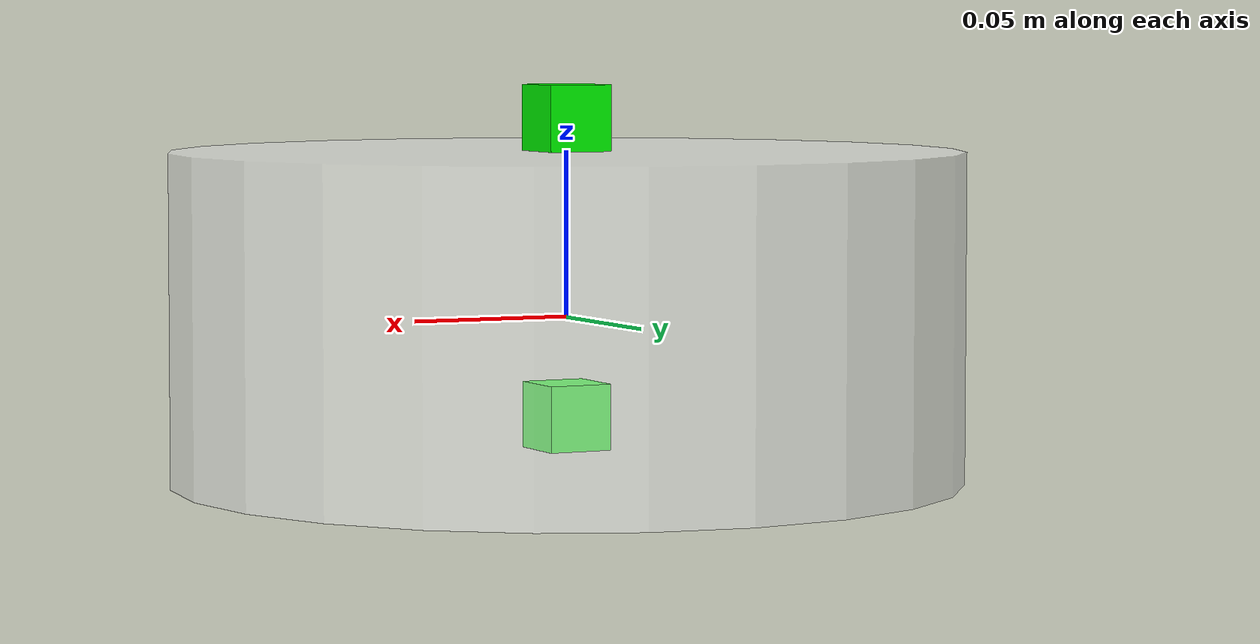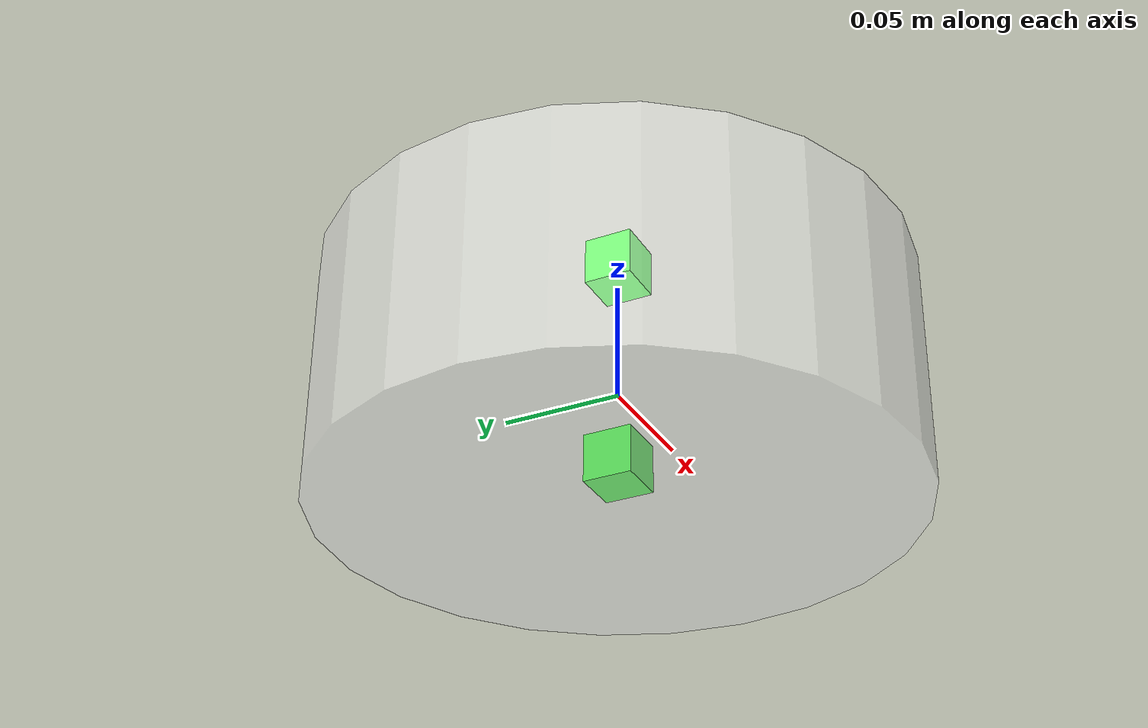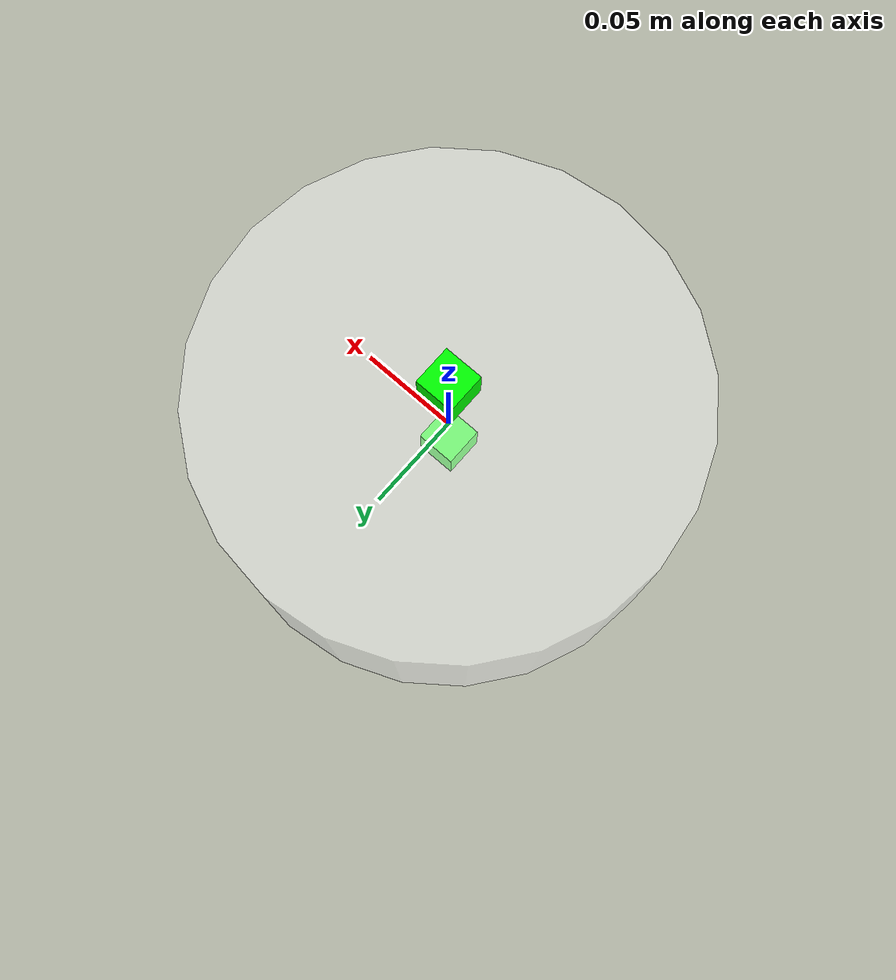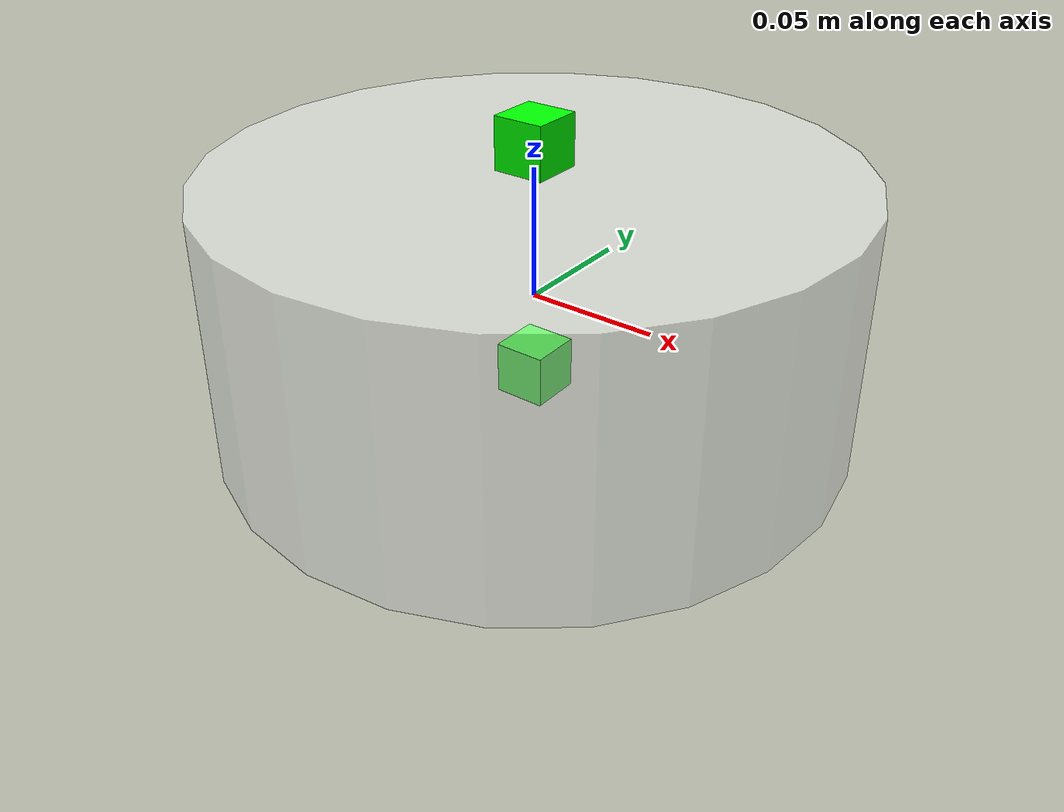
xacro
<?xml version="1.0"?>
<robot xmlns:xacro="http://www.ros.org/wiki/xacro" name="first_robot">
   <xacro:macro name="base_link" params="length radius">
    <link name="base_link">
      <visual>
        <origin xyz="0 0 0" rpy="0 0 0"/>
        <geometry>
          <cylinder length="${length}" radius="${radius}"/>
        </geometry>
        <material name="white">
          <color rgba="1.0 1.0 1.0 0.5"/>
        </material>
      </visual>
    </link>
  </xacro:macro>

    <xacro:macro name="imu_link" params="imu_name imu_link_origin">
        <link name="${imu_name}">
        <visual>
            <origin xyz="0 0 0" rpy="0 0 0"/>
            <geometry>
            <box size="0.02 0.02 0.02"/>
            </geometry>
            <material name="green">
            <color rgba="0 1 0 1"/>
            </material>
        </visual>
        </link>
        <joint name="${imu_name}_joint" type="fixed">
            <parent link="base_link"/>
            <child link="${imu_name}"/>
            <origin xyz="${imu_link_origin}" rpy="0 0 0"/>
        </joint>
    </xacro:macro>
    <!-- 使用宏定义创建机器人链接和关节 -->
    <xacro:base_link length="0.10" radius="0.12"/>
    <xacro:imu_link imu_name="imu_down" imu_link_origin="0 0 -0.03"/>
    <xacro:imu_link imu_name="imu_up" imu_link_origin="0 0 0.06"/>
</robot>
